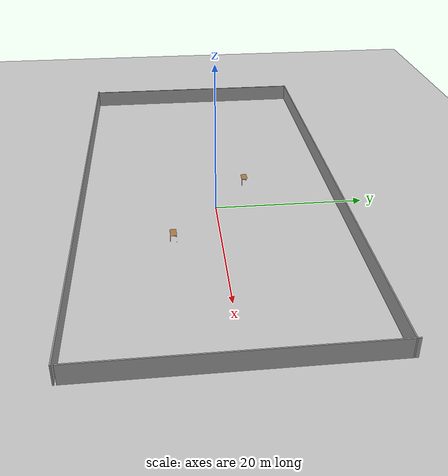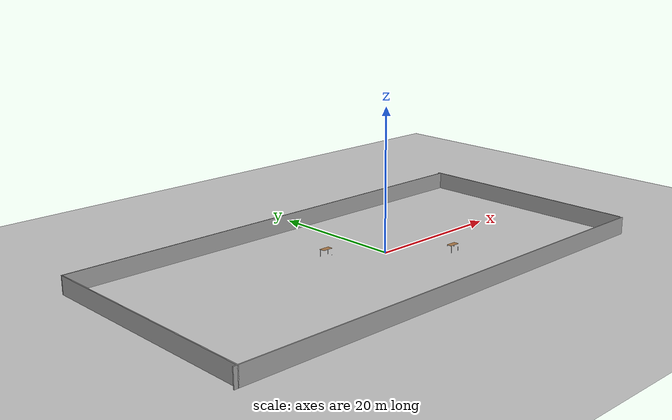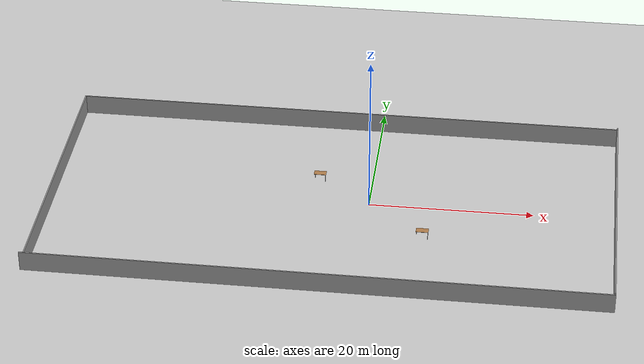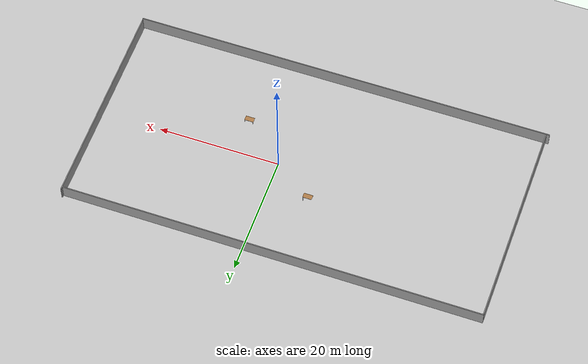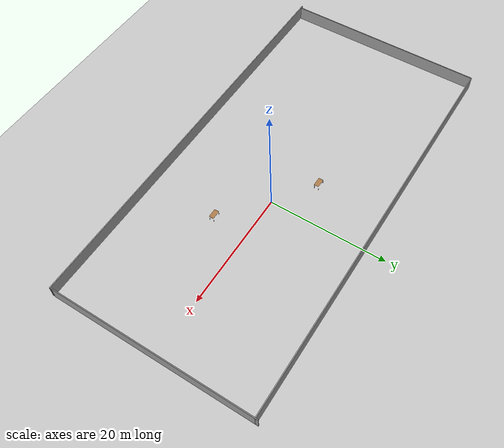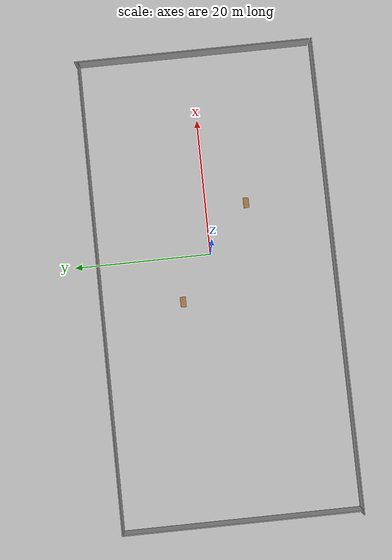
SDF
<sdf version="1.7">
 <world name="default">
  <light name="sun" type="directional">
   <pose>0 0 10 0 -0 0</pose>
   <diffuse>0.8 0.8 0.8 1</diffuse>
   <specular>0.2 0.2 0.2 1</specular>
   <attenuation>
    <range>1000</range>
    <constant>0.9</constant>
    <linear>0.01</linear>
    <quadratic>0.001</quadratic>
   </attenuation>
   <direction>-0.5 0.1 -0.9</direction>
   <spot><inner_angle>0</inner_angle><outer_angle>0</outer_angle><falloff>0</falloff></spot>
  </light>
  <model name="ground_plane">
   <static>1</static>
   <link name="link">
    <collision name="collision">
     <geometry><plane><normal>0 0 1</normal><size>100 100</size></plane></geometry>
     <surface>
      <contact><collide_bitmask>65535</collide_bitmask></contact>
      <friction><ode><mu>100</mu><mu2>50</mu2></ode></friction>
     </surface>
    </collision>
    <visual name="visual">
     <cast_shadows>0</cast_shadows>
     <geometry><plane><normal>0 0 1</normal><size>100 100</size></plane></geometry>
     <material>
      <script><uri>file://media/materials/scripts/gazebo.material</uri><name>Gazebo/Grey</name></script>
     </material>
    </visual>
   </link>
  </model>
  <gravity>0 0 -9.8</gravity>
  <magnetic_field>6e-06 2.3e-05 -4.2e-05</magnetic_field>
  <atmosphere type="adiabatic"/>
  <physics type="ode">
   <max_step_size>0.001</max_step_size>
   <real_time_factor>1</real_time_factor>
   <real_time_update_rate>1000</real_time_update_rate>
  </physics>
  <scene><ambient>0.4 0.4 0.4 1</ambient><background>0.7 0.7 0.7 1</background><shadows>1</shadows></scene>
  <spherical_coordinates>
   <surface_model>EARTH_WGS84</surface_model>
   <latitude_deg>0</latitude_deg>
   <longitude_deg>0</longitude_deg>
   <elevation>0</elevation>
   <heading_deg>0</heading_deg>
  </spherical_coordinates>
  <model name="wall">
   <pose>-4.64156 12.9053 0 0 -0 0</pose>
   <link name="Wall_6">
    <collision name="Wall_6_Collision">
     <geometry><box><size>69.1511 0.15 2.5</size></box></geometry>
     <pose>0 0 1.25 0 -0 0</pose>
    </collision>
    <visual name="Wall_6_Visual">
     <pose>0 0 1.25 0 -0 0</pose>
     <geometry><box><size>69.1511 0.15 2.5</size></box></geometry>
     <material>
      <script><uri>file://media/materials/scripts/gazebo.material</uri><name>Gazebo/Grey</name></script>
      <ambient>1 1 1 1</ambient>
     </material>
     <meta><layer>0</layer></meta>
    </visual>
    <pose>-3e-06 -30.7357 0 0 -0 0</pose>
   </link>
   <link name="Wall_7">
    <collision name="Wall_7_Collision">
     <geometry><box><size>34.5 0.15 2.5</size></box></geometry>
     <pose>0 0 1.25 0 -0 0</pose>
    </collision>
    <visual name="Wall_7_Visual">
     <pose>0 0 1.25 0 -0 0</pose>
     <geometry><box><size>34.5 0.15 2.5</size></box></geometry>
     <material>
      <script><uri>file://media/materials/scripts/gazebo.material</uri><name>Gazebo/Grey</name></script>
      <ambient>1 1 1 1</ambient>
     </material>
     <meta><layer>0</layer></meta>
    </visual>
    <pose>34.5005 -13.1833 0 0 -0 1.5708</pose>
   </link>
   <link name="Wall_8">
    <collision name="Wall_8_Collision">
     <geometry><box><size>68.6511 0.15 2.5</size></box></geometry>
     <pose>0 0 1.25 0 -0 0</pose>
    </collision>
    <visual name="Wall_8_Visual">
     <pose>0 0 1.25 0 -0 0</pose>
     <geometry><box><size>68.6511 0.15 2.5</size></box></geometry>
     <material>
      <script><uri>file://media/materials/scripts/gazebo.material</uri><name>Gazebo/Grey</name></script>
      <ambient>1 1 1 1</ambient>
     </material>
     <meta><layer>0</layer></meta>
    </visual>
    <pose>0.249997 3.61434 0 0 -0 3.14159</pose>
   </link>
   <link name="Wall_9">
    <collision name="Wall_9_Collision">
     <geometry><box><size>34.5 0.15 2.5</size></box></geometry>
     <pose>0 0 1.25 0 -0 0</pose>
    </collision>
    <visual name="Wall_9_Visual">
     <pose>0 0 1.25 0 -0 0</pose>
     <geometry><box><size>34.5 0.15 2.5</size></box></geometry>
     <material>
      <script><uri>file://media/materials/scripts/gazebo.material</uri><name>Gazebo/Grey</name></script>
      <ambient>1 1 1 1</ambient>
     </material>
     <meta><layer>0</layer></meta>
    </visual>
    <pose>-34.0005 -13.5607 0 0 -0 -1.5708</pose>
   </link>
   <static>1</static>
  </model>
  <model name="table">
   <static>1</static>
   <link name="link">
    <collision name="surface">
     <pose>0 0 1 0 -0 0</pose>
     <geometry><box><size>1.5 0.8 0.03</size></box></geometry>
     <surface><friction><ode><mu>0.6</mu><mu2>0.6</mu2></ode></friction></surface>
    </collision>
    <visual name="visual1">
     <pose>0 0 1 0 -0 0</pose>
     <geometry><box><size>1.5 0.8 0.03</size></box></geometry>
     <material>
      <script><uri>file://media/materials/scripts/gazebo.material</uri><name>Gazebo/Wood</name></script>
     </material>
    </visual>
    <collision name="front_left_leg">
     <pose>0.68 0.38 0.5 0 -0 0</pose>
     <geometry><cylinder><radius>0.02</radius><length>1</length></cylinder></geometry>
    </collision>
    <visual name="front_left_leg">
     <pose>0.68 0.38 0.5 0 -0 0</pose>
     <geometry><cylinder><radius>0.02</radius><length>1</length></cylinder></geometry>
     <material>
      <script><uri>file://media/materials/scripts/gazebo.material</uri><name>Gazebo/Grey</name></script>
     </material>
    </visual>
    <collision name="front_right_leg">
     <pose>0.68 -0.38 0.5 0 -0 0</pose>
     <geometry><cylinder><radius>0.02</radius><length>1</length></cylinder></geometry>
    </collision>
    <visual name="front_right_leg">
     <pose>0.68 -0.38 0.5 0 -0 0</pose>
     <geometry><cylinder><radius>0.02</radius><length>1</length></cylinder></geometry>
     <material>
      <script><uri>file://media/materials/scripts/gazebo.material</uri><name>Gazebo/Grey</name></script>
     </material>
    </visual>
    <collision name="back_right_leg">
     <pose>-0.68 -0.38 0.5 0 -0 0</pose>
     <geometry><cylinder><radius>0.02</radius><length>1</length></cylinder></geometry>
    </collision>
    <visual name="back_right_leg">
     <pose>-0.68 -0.38 0.5 0 -0 0</pose>
     <geometry><cylinder><radius>0.02</radius><length>1</length></cylinder></geometry>
     <material>
      <script><uri>file://media/materials/scripts/gazebo.material</uri><name>Gazebo/Grey</name></script>
     </material>
    </visual>
    <collision name="back_left_leg">
     <pose>-0.68 0.38 0.5 0 -0 0</pose>
     <geometry><cylinder><radius>0.02</radius><length>1</length></cylinder></geometry>
    </collision>
    <visual name="back_left_leg">
     <pose>-0.68 0.38 0.5 0 -0 0</pose>
     <geometry><cylinder><radius>0.02</radius><length>1</length></cylinder></geometry>
     <material>
      <script><uri>file://media/materials/scripts/gazebo.material</uri><name>Gazebo/Grey</name></script>
     </material>
    </visual>
   </link>
   <pose>6.97537 -5.93465 0 0 -0 0</pose>
  </model>
  <model name="table_0">
   <static>1</static>
   <link name="link">
    <collision name="surface">
     <pose>0 0 1 0 -0 0</pose>
     <geometry><box><size>1.5 0.8 0.03</size></box></geometry>
     <surface><friction><ode><mu>0.6</mu><mu2>0.6</mu2></ode></friction></surface>
    </collision>
    <visual name="visual1">
     <pose>0 0 1 0 -0 0</pose>
     <geometry><box><size>1.5 0.8 0.03</size></box></geometry>
     <material>
      <script><uri>file://media/materials/scripts/gazebo.material</uri><name>Gazebo/Wood</name></script>
     </material>
    </visual>
    <collision name="front_left_leg">
     <pose>0.68 0.38 0.5 0 -0 0</pose>
     <geometry><cylinder><radius>0.02</radius><length>1</length></cylinder></geometry>
    </collision>
    <visual name="front_left_leg">
     <pose>0.68 0.38 0.5 0 -0 0</pose>
     <geometry><cylinder><radius>0.02</radius><length>1</length></cylinder></geometry>
     <material>
      <script><uri>file://media/materials/scripts/gazebo.material</uri><name>Gazebo/Grey</name></script>
     </material>
    </visual>
    <collision name="front_right_leg">
     <pose>0.68 -0.38 0.5 0 -0 0</pose>
     <geometry><cylinder><radius>0.02</radius><length>1</length></cylinder></geometry>
    </collision>
    <visual name="front_right_leg">
     <pose>0.68 -0.38 0.5 0 -0 0</pose>
     <geometry><cylinder><radius>0.02</radius><length>1</length></cylinder></geometry>
     <material>
      <script><uri>file://media/materials/scripts/gazebo.material</uri><name>Gazebo/Grey</name></script>
     </material>
    </visual>
    <collision name="back_right_leg">
     <pose>-0.68 -0.38 0.5 0 -0 0</pose>
     <geometry><cylinder><radius>0.02</radius><length>1</length></cylinder></geometry>
    </collision>
    <visual name="back_right_leg">
     <pose>-0.68 -0.38 0.5 0 -0 0</pose>
     <geometry><cylinder><radius>0.02</radius><length>1</length></cylinder></geometry>
     <material>
      <script><uri>file://media/materials/scripts/gazebo.material</uri><name>Gazebo/Grey</name></script>
     </material>
    </visual>
    <collision name="back_left_leg">
     <pose>-0.68 0.38 0.5 0 -0 0</pose>
     <geometry><cylinder><radius>0.02</radius><length>1</length></cylinder></geometry>
    </collision>
    <visual name="back_left_leg">
     <pose>-0.68 0.38 0.5 0 -0 0</pose>
     <geometry><cylinder><radius>0.02</radius><length>1</length></cylinder></geometry>
     <material>
      <script><uri>file://media/materials/scripts/gazebo.material</uri><name>Gazebo/Grey</name></script>
     </material>
    </visual>
   </link>
   <pose>-6.56729 4.69115 0 0 -0 0</pose>
  </model>
 </world>
</sdf>
